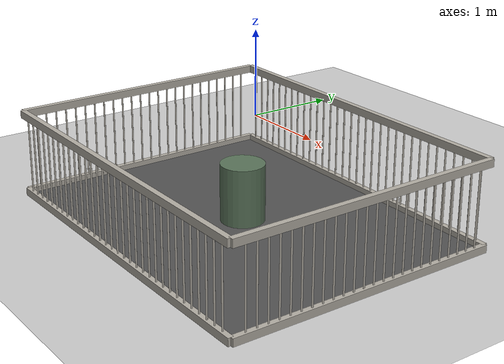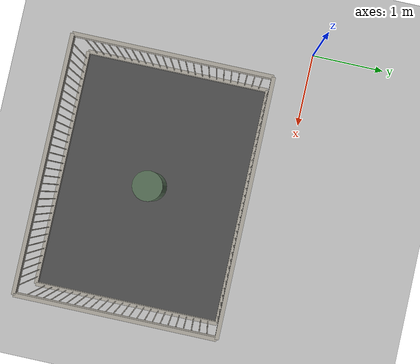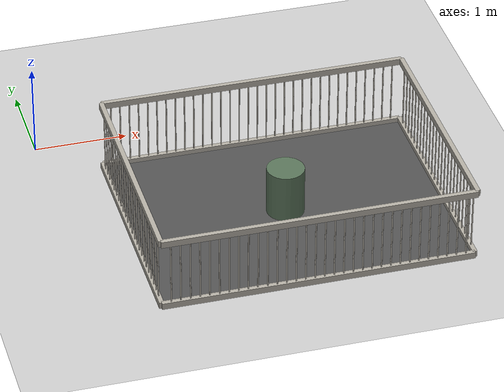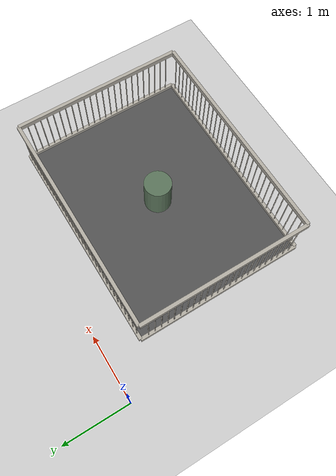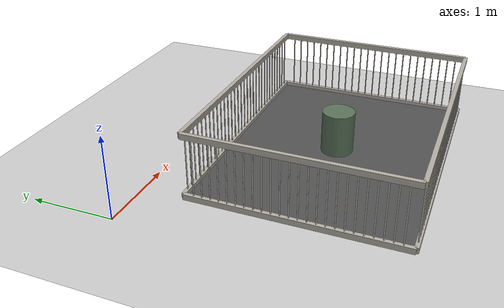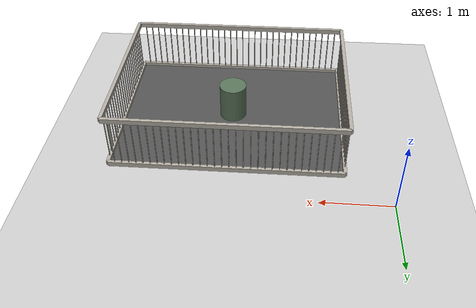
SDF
<sdf version="1.9">
 <world name="pig_pen_16units_world">
  <model name="ground_plane">
   <static>true</static>
   <link name="link">
    <collision name="collision">
     <geometry><plane><normal>0 0 1</normal><size>30 30</size></plane></geometry>
     <surface><friction><ode><mu>1.0</mu><mu2>1.0</mu2></ode></friction></surface>
    </collision>
    <visual name="visual">
     <geometry><plane><normal>0 0 1</normal><size>30 30</size></plane></geometry>
     <material>
      <ambient>0.8 0.8 0.8 1</ambient>
      <diffuse>0.8 0.8 0.8 1</diffuse>
      <specular>0.2 0.2 0.2 1</specular>
     </material>
    </visual>
   </link>
  </model>
  <model name="pen11">
   <pose>2.275 -1.795 0 0 0 0</pose>
   <static>true</static>
   <link name="floor">
    <pose>0 0 0.01 0 0 0</pose>
    <collision name="collision"><geometry><box><size>3.30 2.55 0.02</size></box></geometry></collision>
    <visual name="visual">
     <geometry><box><size>3.30 2.55 0.02</size></box></geometry>
     <material>
      <ambient>0.25 0.25 0.25 1</ambient>
      <diffuse>0.32 0.32 0.32 1</diffuse>
      <specular>0.05 0.05 0.05 1</specular>
     </material>
    </visual>
   </link>
   <link name="left_wall">
    <pose>0 1.275 0.415 0 0 0</pose>
    <collision name="top_rail_col">
     <pose>0 0 0.38 0 0 0</pose>
     <geometry><box><size>3.30 0.05 0.07</size></box></geometry>
    </collision>
    <visual name="top_rail_vis">
     <pose>0 0 0.38 0 0 0</pose>
     <geometry><box><size>3.30 0.05 0.07</size></box></geometry>
     <material><ambient>0.70 0.68 0.64 1</ambient><diffuse>0.70 0.68 0.64 1</diffuse></material>
    </visual>
    <collision name="bottom_rail_col">
     <pose>0 0 -0.38 0 0 0</pose>
     <geometry><box><size>3.30 0.05 0.07</size></box></geometry>
    </collision>
    <visual name="bottom_rail_vis">
     <pose>0 0 -0.38 0 0 0</pose>
     <geometry><box><size>3.30 0.05 0.07</size></box></geometry>
     <material><ambient>0.70 0.68 0.64 1</ambient><diffuse>0.70 0.68 0.64 1</diffuse></material>
    </visual>
    <collision name="bar_01_col">
     <pose>-1.55 0 0 0 0 0</pose>
     <geometry><cylinder><radius>0.0075</radius><length>0.69</length></cylinder></geometry>
    </collision>
    <visual name="bar_01_vis">
     <pose>-1.55 0 0 0 0 0</pose>
     <geometry><cylinder><radius>0.0075</radius><length>0.69</length></cylinder></geometry>
     <material><ambient>0.70 0.68 0.64 1</ambient><diffuse>0.70 0.68 0.64 1</diffuse></material>
    </visual>
    <collision name="bar_02_col">
     <pose>-1.45 0 0 0 0 0</pose>
     <geometry><cylinder><radius>0.0075</radius><length>0.69</length></cylinder></geometry>
    </collision>
    <visual name="bar_02_vis">
     <pose>-1.45 0 0 0 0 0</pose>
     <geometry><cylinder><radius>0.0075</radius><length>0.69</length></cylinder></geometry>
     <material><ambient>0.70 0.68 0.64 1</ambient><diffuse>0.70 0.68 0.64 1</diffuse></material>
    </visual>
    <collision name="bar_03_col">
     <pose>-1.35 0 0 0 0 0</pose>
     <geometry><cylinder><radius>0.0075</radius><length>0.69</length></cylinder></geometry>
    </collision>
    <visual name="bar_03_vis">
     <pose>-1.35 0 0 0 0 0</pose>
     <geometry><cylinder><radius>0.0075</radius><length>0.69</length></cylinder></geometry>
     <material><ambient>0.70 0.68 0.64 1</ambient><diffuse>0.70 0.68 0.64 1</diffuse></material>
    </visual>
    <collision name="bar_04_col">
     <pose>-1.25 0 0 0 0 0</pose>
     <geometry><cylinder><radius>0.0075</radius><length>0.69</length></cylinder></geometry>
    </collision>
    <visual name="bar_04_vis">
     <pose>-1.25 0 0 0 0 0</pose>
     <geometry><cylinder><radius>0.0075</radius><length>0.69</length></cylinder></geometry>
     <material><ambient>0.70 0.68 0.64 1</ambient><diffuse>0.70 0.68 0.64 1</diffuse></material>
    </visual>
    <collision name="bar_05_col">
     <pose>-1.15 0 0 0 0 0</pose>
     <geometry><cylinder><radius>0.0075</radius><length>0.69</length></cylinder></geometry>
    </collision>
    <visual name="bar_05_vis">
     <pose>-1.15 0 0 0 0 0</pose>
     <geometry><cylinder><radius>0.0075</radius><length>0.69</length></cylinder></geometry>
     <material><ambient>0.70 0.68 0.64 1</ambient><diffuse>0.70 0.68 0.64 1</diffuse></material>
    </visual>
    <collision name="bar_06_col">
     <pose>-1.05 0 0 0 0 0</pose>
     <geometry><cylinder><radius>0.0075</radius><length>0.69</length></cylinder></geometry>
    </collision>
    <visual name="bar_06_vis">
     <pose>-1.05 0 0 0 0 0</pose>
     <geometry><cylinder><radius>0.0075</radius><length>0.69</length></cylinder></geometry>
     <material><ambient>0.70 0.68 0.64 1</ambient><diffuse>0.70 0.68 0.64 1</diffuse></material>
    </visual>
    <collision name="bar_07_col">
     <pose>-0.95 0 0 0 0 0</pose>
     <geometry><cylinder><radius>0.0075</radius><length>0.69</length></cylinder></geometry>
    </collision>
    <visual name="bar_07_vis">
     <pose>-0.95 0 0 0 0 0</pose>
     <geometry><cylinder><radius>0.0075</radius><length>0.69</length></cylinder></geometry>
     <material><ambient>0.70 0.68 0.64 1</ambient><diffuse>0.70 0.68 0.64 1</diffuse></material>
    </visual>
    <collision name="bar_08_col">
     <pose>-0.85 0 0 0 0 0</pose>
     <geometry><cylinder><radius>0.0075</radius><length>0.69</length></cylinder></geometry>
    </collision>
    <visual name="bar_08_vis">
     <pose>-0.85 0 0 0 0 0</pose>
     <geometry><cylinder><radius>0.0075</radius><length>0.69</length></cylinder></geometry>
     <material><ambient>0.70 0.68 0.64 1</ambient><diffuse>0.70 0.68 0.64 1</diffuse></material>
    </visual>
    <collision name="bar_09_col">
     <pose>-0.75 0 0 0 0 0</pose>
     <geometry><cylinder><radius>0.0075</radius><length>0.69</length></cylinder></geometry>
    </collision>
    <visual name="bar_09_vis">
     <pose>-0.75 0 0 0 0 0</pose>
     <geometry><cylinder><radius>0.0075</radius><length>0.69</length></cylinder></geometry>
     <material><ambient>0.70 0.68 0.64 1</ambient><diffuse>0.70 0.68 0.64 1</diffuse></material>
    </visual>
    <collision name="bar_10_col">
     <pose>-0.65 0 0 0 0 0</pose>
     <geometry><cylinder><radius>0.0075</radius><length>0.69</length></cylinder></geometry>
    </collision>
    <visual name="bar_10_vis">
     <pose>-0.65 0 0 0 0 0</pose>
     <geometry><cylinder><radius>0.0075</radius><length>0.69</length></cylinder></geometry>
     <material><ambient>0.70 0.68 0.64 1</ambient><diffuse>0.70 0.68 0.64 1</diffuse></material>
    </visual>
    <collision name="bar_11_col">
     <pose>-0.55 0 0 0 0 0</pose>
     <geometry><cylinder><radius>0.0075</radius><length>0.69</length></cylinder></geometry>
    </collision>
    <visual name="bar_11_vis">
     <pose>-0.55 0 0 0 0 0</pose>
     <geometry><cylinder><radius>0.0075</radius><length>0.69</length></cylinder></geometry>
     <material><ambient>0.70 0.68 0.64 1</ambient><diffuse>0.70 0.68 0.64 1</diffuse></material>
    </visual>
    <collision name="bar_12_col">
     <pose>-0.45 0 0 0 0 0</pose>
     <geometry><cylinder><radius>0.0075</radius><length>0.69</length></cylinder></geometry>
    </collision>
    <visual name="bar_12_vis">
     <pose>-0.45 0 0 0 0 0</pose>
     <geometry><cylinder><radius>0.0075</radius><length>0.69</length></cylinder></geometry>
     <material><ambient>0.70 0.68 0.64 1</ambient><diffuse>0.70 0.68 0.64 1</diffuse></material>
    </visual>
    <collision name="bar_13_col">
     <pose>-0.35 0 0 0 0 0</pose>
     <geometry><cylinder><radius>0.0075</radius><length>0.69</length></cylinder></geometry>
    </collision>
    <visual name="bar_13_vis">
     <pose>-0.35 0 0 0 0 0</pose>
     <geometry><cylinder><radius>0.0075</radius><length>0.69</length></cylinder></geometry>
     <material><ambient>0.70 0.68 0.64 1</ambient><diffuse>0.70 0.68 0.64 1</diffuse></material>
    </visual>
    <collision name="bar_14_col">
     <pose>-0.25 0 0 0 0 0</pose>
     <geometry><cylinder><radius>0.0075</radius><length>0.69</length></cylinder></geometry>
    </collision>
    <visual name="bar_14_vis">
     <pose>-0.25 0 0 0 0 0</pose>
     <geometry><cylinder><radius>0.0075</radius><length>0.69</length></cylinder></geometry>
     <material><ambient>0.70 0.68 0.64 1</ambient><diffuse>0.70 0.68 0.64 1</diffuse></material>
    </visual>
    <collision name="bar_15_col">
     <pose>-0.15 0 0 0 0 0</pose>
     <geometry><cylinder><radius>0.0075</radius><length>0.69</length></cylinder></geometry>
    </collision>
    <visual name="bar_15_vis">
     <pose>-0.15 0 0 0 0 0</pose>
     <geometry><cylinder><radius>0.0075</radius><length>0.69</length></cylinder></geometry>
     <material><ambient>0.70 0.68 0.64 1</ambient><diffuse>0.70 0.68 0.64 1</diffuse></material>
    </visual>
    <collision name="bar_16_col">
     <pose>-0.05 0 0 0 0 0</pose>
     <geometry><cylinder><radius>0.0075</radius><length>0.69</length></cylinder></geometry>
    </collision>
    <visual name="bar_16_vis">
     <pose>-0.05 0 0 0 0 0</pose>
     <geometry><cylinder><radius>0.0075</radius><length>0.69</length></cylinder></geometry>
     <material><ambient>0.70 0.68 0.64 1</ambient><diffuse>0.70 0.68 0.64 1</diffuse></material>
    </visual>
    <collision name="bar_17_col">
     <pose>0.05 0 0 0 0 0</pose>
     <geometry><cylinder><radius>0.0075</radius><length>0.69</length></cylinder></geometry>
    </collision>
    <visual name="bar_17_vis">
     <pose>0.05 0 0 0 0 0</pose>
     <geometry><cylinder><radius>0.0075</radius><length>0.69</length></cylinder></geometry>
     <material><ambient>0.70 0.68 0.64 1</ambient><diffuse>0.70 0.68 0.64 1</diffuse></material>
    </visual>
    <collision name="bar_18_col">
     <pose>0.15 0 0 0 0 0</pose>
     <geometry><cylinder><radius>0.0075</radius><length>0.69</length></cylinder></geometry>
    </collision>
    <visual name="bar_18_vis">
     <pose>0.15 0 0 0 0 0</pose>
     <geometry><cylinder><radius>0.0075</radius><length>0.69</length></cylinder></geometry>
     <material><ambient>0.70 0.68 0.64 1</ambient><diffuse>0.70 0.68 0.64 1</diffuse></material>
    </visual>
    <collision name="bar_19_col">
     <pose>0.25 0 0 0 0 0</pose>
     <geometry><cylinder><radius>0.0075</radius><length>0.69</length></cylinder></geometry>
    </collision>
    <visual name="bar_19_vis">
     <pose>0.25 0 0 0 0 0</pose>
     <geometry><cylinder><radius>0.0075</radius><length>0.69</length></cylinder></geometry>
     <material><ambient>0.70 0.68 0.64 1</ambient><diffuse>0.70 0.68 0.64 1</diffuse></material>
    </visual>
    <collision name="bar_20_col">
     <pose>0.35 0 0 0 0 0</pose>
     <geometry><cylinder><radius>0.0075</radius><length>0.69</length></cylinder></geometry>
    </collision>
    <visual name="bar_20_vis">
     <pose>0.35 0 0 0 0 0</pose>
     <geometry><cylinder><radius>0.0075</radius><length>0.69</length></cylinder></geometry>
     <material><ambient>0.70 0.68 0.64 1</ambient><diffuse>0.70 0.68 0.64 1</diffuse></material>
    </visual>
    <collision name="bar_21_col">
     <pose>0.45 0 0 0 0 0</pose>
     <geometry><cylinder><radius>0.0075</radius><length>0.69</length></cylinder></geometry>
    </collision>
    <visual name="bar_21_vis">
     <pose>0.45 0 0 0 0 0</pose>
     <geometry><cylinder><radius>0.0075</radius><length>0.69</length></cylinder></geometry>
     <material><ambient>0.70 0.68 0.64 1</ambient><diffuse>0.70 0.68 0.64 1</diffuse></material>
    </visual>
    <collision name="bar_22_col">
     <pose>0.55 0 0 0 0 0</pose>
     <geometry><cylinder><radius>0.0075</radius><length>0.69</length></cylinder></geometry>
    </collision>
    <visual name="bar_22_vis">
     <pose>0.55 0 0 0 0 0</pose>
     <geometry><cylinder><radius>0.0075</radius><length>0.69</length></cylinder></geometry>
     <material><ambient>0.70 0.68 0.64 1</ambient><diffuse>0.70 0.68 0.64 1</diffuse></material>
    </visual>
    <collision name="bar_23_col">
     <pose>0.65 0 0 0 0 0</pose>
     <geometry><cylinder><radius>0.0075</radius><length>0.69</length></cylinder></geometry>
    </collision>
    <visual name="bar_23_vis">
     <pose>0.65 0 0 0 0 0</pose>
     <geometry><cylinder><radius>0.0075</radius><length>0.69</length></cylinder></geometry>
     <material><ambient>0.70 0.68 0.64 1</ambient><diffuse>0.70 0.68 0.64 1</diffuse></material>
    </visual>
    <collision name="bar_24_col">
     <pose>0.75 0 0 0 0 0</pose>
     <geometry><cylinder><radius>0.0075</radius><length>0.69</length></cylinder></geometry>
    </collision>
    <visual name="bar_24_vis">
     <pose>0.75 0 0 0 0 0</pose>
     <geometry><cylinder><radius>0.0075</radius><length>0.69</length></cylinder></geometry>
     <material><ambient>0.70 0.68 0.64 1</ambient><diffuse>0.70 0.68 0.64 1</diffuse></material>
    </visual>
    <collision name="bar_25_col">
     <pose>0.85 0 0 0 0 0</pose>
     <geometry><cylinder><radius>0.0075</radius><length>0.69</length></cylinder></geometry>
    </collision>
    <visual name="bar_25_vis">
     <pose>0.85 0 0 0 0 0</pose>
     <geometry><cylinder><radius>0.0075</radius><length>0.69</length></cylinder></geometry>
     <material><ambient>0.70 0.68 0.64 1</ambient><diffuse>0.70 0.68 0.64 1</diffuse></material>
    </visual>
    <collision name="bar_26_col">
     <pose>0.95 0 0 0 0 0</pose>
     <geometry><cylinder><radius>0.0075</radius><length>0.69</length></cylinder></geometry>
    </collision>
    <visual name="bar_26_vis">
     <pose>0.95 0 0 0 0 0</pose>
     <geometry><cylinder><radius>0.0075</radius><length>0.69</length></cylinder></geometry>
     <material><ambient>0.70 0.68 0.64 1</ambient><diffuse>0.70 0.68 0.64 1</diffuse></material>
    </visual>
    <collision name="bar_27_col">
     <pose>1.05 0 0 0 0 0</pose>
     <geometry><cylinder><radius>0.0075</radius><length>0.69</length></cylinder></geometry>
    </collision>
    <visual name="bar_27_vis">
     <pose>1.05 0 0 0 0 0</pose>
     <geometry><cylinder><radius>0.0075</radius><length>0.69</length></cylinder></geometry>
     <material><ambient>0.70 0.68 0.64 1</ambient><diffuse>0.70 0.68 0.64 1</diffuse></material>
    </visual>
    <collision name="bar_28_col">
     <pose>1.15 0 0 0 0 0</pose>
     <geometry><cylinder><radius>0.0075</radius><length>0.69</length></cylinder></geometry>
    </collision>
    <visual name="bar_28_vis">
     <pose>1.15 0 0 0 0 0</pose>
     <geometry><cylinder><radius>0.0075</radius><length>0.69</length></cylinder></geometry>
     <material><ambient>0.70 0.68 0.64 1</ambient><diffuse>0.70 0.68 0.64 1</diffuse></material>
    </visual>
    <collision name="bar_29_col">
     <pose>1.25 0 0 0 0 0</pose>
     <geometry><cylinder><radius>0.0075</radius><length>0.69</length></cylinder></geometry>
    </collision>
    <visual name="bar_29_vis">
     <pose>1.25 0 0 0 0 0</pose>
     <geometry><cylinder><radius>0.0075</radius><length>0.69</length></cylinder></geometry>
     <material><ambient>0.70 0.68 0.64 1</ambient><diffuse>0.70 0.68 0.64 1</diffuse></material>
    </visual>
    <collision name="bar_30_col">
     <pose>1.35 0 0 0 0 0</pose>
     <geometry><cylinder><radius>0.0075</radius><length>0.69</length></cylinder></geometry>
    </collision>
    <visual name="bar_30_vis">
     <pose>1.35 0 0 0 0 0</pose>
     <geometry><cylinder><radius>0.0075</radius><length>0.69</length></cylinder></geometry>
     <material><ambient>0.70 0.68 0.64 1</ambient><diffuse>0.70 0.68 0.64 1</diffuse></material>
    </visual>
    <collision name="bar_31_col">
     <pose>1.45 0 0 0 0 0</pose>
     <geometry><cylinder><radius>0.0075</radius><length>0.69</length></cylinder></geometry>
    </collision>
    <visual name="bar_31_vis">
     <pose>1.45 0 0 0 0 0</pose>
     <geometry><cylinder><radius>0.0075</radius><length>0.69</length></cylinder></geometry>
     <material><ambient>0.70 0.68 0.64 1</ambient><diffuse>0.70 0.68 0.64 1</diffuse></material>
    </visual>
    <collision name="bar_32_col">
     <pose>1.55 0 0 0 0 0</pose>
     <geometry><cylinder><radius>0.0075</radius><length>0.69</length></cylinder></geometry>
    </collision>
    <visual name="bar_32_vis">
     <pose>1.55 0 0 0 0 0</pose>
     <geometry><cylinder><radius>0.0075</radius><length>0.69</length></cylinder></geometry>
     <material><ambient>0.70 0.68 0.64 1</ambient><diffuse>0.70 0.68 0.64 1</diffuse></material>
    </visual>
   </link>
   <link name="right_wall">
    <pose>0 -1.275 0.415 0 0 0</pose>
    <collision name="top_rail_col">
     <pose>0 0 0.38 0 0 0</pose>
     <geometry><box><size>3.30 0.05 0.07</size></box></geometry>
    </collision>
    <visual name="top_rail_vis">
     <pose>0 0 0.38 0 0 0</pose>
     <geometry><box><size>3.30 0.05 0.07</size></box></geometry>
     <material><ambient>0.70 0.68 0.64 1</ambient><diffuse>0.70 0.68 0.64 1</diffuse></material>
    </visual>
    <collision name="bottom_rail_col">
     <pose>0 0 -0.38 0 0 0</pose>
     <geometry><box><size>3.30 0.05 0.07</size></box></geometry>
    </collision>
    <visual name="bottom_rail_vis">
     <pose>0 0 -0.38 0 0 0</pose>
     <geometry><box><size>3.30 0.05 0.07</size></box></geometry>
     <material><ambient>0.70 0.68 0.64 1</ambient><diffuse>0.70 0.68 0.64 1</diffuse></material>
    </visual>
    <collision name="bar_01_col">
     <pose>-1.55 0 0 0 0 0</pose>
     <geometry><cylinder><radius>0.0075</radius><length>0.69</length></cylinder></geometry>
    </collision>
    <visual name="bar_01_vis">
     <pose>-1.55 0 0 0 0 0</pose>
     <geometry><cylinder><radius>0.0075</radius><length>0.69</length></cylinder></geometry>
     <material><ambient>0.70 0.68 0.64 1</ambient><diffuse>0.70 0.68 0.64 1</diffuse></material>
    </visual>
    <collision name="bar_02_col">
     <pose>-1.45 0 0 0 0 0</pose>
     <geometry><cylinder><radius>0.0075</radius><length>0.69</length></cylinder></geometry>
    </collision>
    <visual name="bar_02_vis">
     <pose>-1.45 0 0 0 0 0</pose>
     <geometry><cylinder><radius>0.0075</radius><length>0.69</length></cylinder></geometry>
     <material><ambient>0.70 0.68 0.64 1</ambient><diffuse>0.70 0.68 0.64 1</diffuse></material>
    </visual>
    <collision name="bar_03_col">
     <pose>-1.35 0 0 0 0 0</pose>
     <geometry><cylinder><radius>0.0075</radius><length>0.69</length></cylinder></geometry>
    </collision>
    <visual name="bar_03_vis">
     <pose>-1.35 0 0 0 0 0</pose>
     <geometry><cylinder><radius>0.0075</radius><length>0.69</length></cylinder></geometry>
     <material><ambient>0.70 0.68 0.64 1</ambient><diffuse>0.70 0.68 0.64 1</diffuse></material>
    </visual>
    <collision name="bar_04_col">
     <pose>-1.25 0 0 0 0 0</pose>
     <geometry><cylinder><radius>0.0075</radius><length>0.69</length></cylinder></geometry>
    </collision>
    <visual name="bar_04_vis">
     <pose>-1.25 0 0 0 0 0</pose>
     <geometry><cylinder><radius>0.0075</radius><length>0.69</length></cylinder></geometry>
     <material><ambient>0.70 0.68 0.64 1</ambient><diffuse>0.70 0.68 0.64 1</diffuse></material>
    </visual>
    <collision name="bar_05_col">
     <pose>-1.15 0 0 0 0 0</pose>
     <geometry><cylinder><radius>0.0075</radius><length>0.69</length></cylinder></geometry>
    </collision>
    <visual name="bar_05_vis">
     <pose>-1.15 0 0 0 0 0</pose>
     <geometry><cylinder><radius>0.0075</radius><length>0.69</length></cylinder></geometry>
     <material><ambient>0.70 0.68 0.64 1</ambient><diffuse>0.70 0.68 0.64 1</diffuse></material>
    </visual>
    <collision name="bar_06_col">
     <pose>-1.05 0 0 0 0 0</pose>
     <geometry><cylinder><radius>0.0075</radius><length>0.69</length></cylinder></geometry>
    </collision>
    <visual name="bar_06_vis">
     <pose>-1.05 0 0 0 0 0</pose>
     <geometry><cylinder><radius>0.0075</radius><length>0.69</length></cylinder></geometry>
     <material><ambient>0.70 0.68 0.64 1</ambient><diffuse>0.70 0.68 0.64 1</diffuse></material>
    </visual>
    <collision name="bar_07_col">
     <pose>-0.95 0 0 0 0 0</pose>
     <geometry><cylinder><radius>0.0075</radius><length>0.69</length></cylinder></geometry>
    </collision>
    <visual name="bar_07_vis">
     <pose>-0.95 0 0 0 0 0</pose>
     <geometry><cylinder><radius>0.0075</radius><length>0.69</length></cylinder></geometry>
     <material><ambient>0.70 0.68 0.64 1</ambient><diffuse>0.70 0.68 0.64 1</diffuse></material>
    </visual>
    <collision name="bar_08_col">
     <pose>-0.85 0 0 0 0 0</pose>
     <geometry><cylinder><radius>0.0075</radius><length>0.69</length></cylinder></geometry>
    </collision>
    <visual name="bar_08_vis">
     <pose>-0.85 0 0 0 0 0</pose>
     <geometry><cylinder><radius>0.0075</radius><length>0.69</length></cylinder></geometry>
     <material><ambient>0.70 0.68 0.64 1</ambient><diffuse>0.70 0.68 0.64 1</diffuse></material>
    </visual>
    <collision name="bar_09_col">
     <pose>-0.75 0 0 0 0 0</pose>
     <geometry><cylinder><radius>0.0075</radius><length>0.69</length></cylinder></geometry>
    </collision>
    <visual name="bar_09_vis">
     <pose>-0.75 0 0 0 0 0</pose>
     <geometry><cylinder><radius>0.0075</radius><length>0.69</length></cylinder></geometry>
     <material><ambient>0.70 0.68 0.64 1</ambient><diffuse>0.70 0.68 0.64 1</diffuse></material>
    </visual>
    <collision name="bar_10_col">
     <pose>-0.65 0 0 0 0 0</pose>
     <geometry><cylinder><radius>0.0075</radius><length>0.69</length></cylinder></geometry>
    </collision>
    <visual name="bar_10_vis">
     <pose>-0.65 0 0 0 0 0</pose>
     <geometry><cylinder><radius>0.0075</radius><length>0.69</length></cylinder></geometry>
     <material><ambient>0.70 0.68 0.64 1</ambient><diffuse>0.70 0.68 0.64 1</diffuse></material>
    </visual>
    <collision name="bar_11_col">
     <pose>-0.55 0 0 0 0 0</pose>
     <geometry><cylinder><radius>0.0075</radius><length>0.69</length></cylinder></geometry>
    </collision>
    <visual name="bar_11_vis">
     <pose>-0.55 0 0 0 0 0</pose>
     <geometry><cylinder><radius>0.0075</radius><length>0.69</length></cylinder></geometry>
     <material><ambient>0.70 0.68 0.64 1</ambient><diffuse>0.70 0.68 0.64 1</diffuse></material>
    </visual>
    <collision name="bar_12_col">
     <pose>-0.45 0 0 0 0 0</pose>
     <geometry><cylinder><radius>0.0075</radius><length>0.69</length></cylinder></geometry>
    </collision>
    <visual name="bar_12_vis">
     <pose>-0.45 0 0 0 0 0</pose>
     <geometry><cylinder><radius>0.0075</radius><length>0.69</length></cylinder></geometry>
     <material><ambient>0.70 0.68 0.64 1</ambient><diffuse>0.70 0.68 0.64 1</diffuse></material>
    </visual>
    <collision name="bar_13_col">
     <pose>-0.35 0 0 0 0 0</pose>
     <geometry><cylinder><radius>0.0075</radius><length>0.69</length></cylinder></geometry>
    </collision>
    <visual name="bar_13_vis">
     <pose>-0.35 0 0 0 0 0</pose>
     <geometry><cylinder><radius>0.0075</radius><length>0.69</length></cylinder></geometry>
     <material><ambient>0.70 0.68 0.64 1</ambient><diffuse>0.70 0.68 0.64 1</diffuse></material>
    </visual>
    <collision name="bar_14_col">
     <pose>-0.25 0 0 0 0 0</pose>
     <geometry><cylinder><radius>0.0075</radius><length>0.69</length></cylinder></geometry>
    </collision>
    <visual name="bar_14_vis">
     <pose>-0.25 0 0 0 0 0</pose>
     <geometry><cylinder><radius>0.0075</radius><length>0.69</length></cylinder></geometry>
     <material><ambient>0.70 0.68 0.64 1</ambient><diffuse>0.70 0.68 0.64 1</diffuse></material>
    </visual>
    <collision name="bar_15_col">
     <pose>-0.15 0 0 0 0 0</pose>
     <geometry><cylinder><radius>0.0075</radius><length>0.69</length></cylinder></geometry>
    </collision>
    <visual name="bar_15_vis">
     <pose>-0.15 0 0 0 0 0</pose>
     <geometry><cylinder><radius>0.0075</radius><length>0.69</length></cylinder></geometry>
     <material><ambient>0.70 0.68 0.64 1</ambient><diffuse>0.70 0.68 0.64 1</diffuse></material>
    </visual>
    <collision name="bar_16_col">
     <pose>-0.05 0 0 0 0 0</pose>
     <geometry><cylinder><radius>0.0075</radius><length>0.69</length></cylinder></geometry>
    </collision>
    <visual name="bar_16_vis">
     <pose>-0.05 0 0 0 0 0</pose>
     <geometry><cylinder><radius>0.0075</radius><length>0.69</length></cylinder></geometry>
     <material><ambient>0.70 0.68 0.64 1</ambient><diffuse>0.70 0.68 0.64 1</diffuse></material>
    </visual>
    <collision name="bar_17_col">
     <pose>0.05 0 0 0 0 0</pose>
     <geometry><cylinder><radius>0.0075</radius><length>0.69</length></cylinder></geometry>
    </collision>
    <visual name="bar_17_vis">
     <pose>0.05 0 0 0 0 0</pose>
     <geometry><cylinder><radius>0.0075</radius><length>0.69</length></cylinder></geometry>
     <material><ambient>0.70 0.68 0.64 1</ambient><diffuse>0.70 0.68 0.64 1</diffuse></material>
    </visual>
    <collision name="bar_18_col">
     <pose>0.15 0 0 0 0 0</pose>
     <geometry><cylinder><radius>0.0075</radius><length>0.69</length></cylinder></geometry>
    </collision>
    <visual name="bar_18_vis">
     <pose>0.15 0 0 0 0 0</pose>
     <geometry><cylinder><radius>0.0075</radius><length>0.69</length></cylinder></geometry>
     <material><ambient>0.70 0.68 0.64 1</ambient><diffuse>0.70 0.68 0.64 1</diffuse></material>
    </visual>
    <collision name="bar_19_col">
     <pose>0.25 0 0 0 0 0</pose>
     <geometry><cylinder><radius>0.0075</radius><length>0.69</length></cylinder></geometry>
    </collision>
    <visual name="bar_19_vis">
     <pose>0.25 0 0 0 0 0</pose>
     <geometry><cylinder><radius>0.0075</radius><length>0.69</length></cylinder></geometry>
     <material><ambient>0.70 0.68 0.64 1</ambient><diffuse>0.70 0.68 0.64 1</diffuse></material>
    </visual>
    <collision name="bar_20_col">
     <pose>0.35 0 0 0 0 0</pose>
     <geometry><cylinder><radius>0.0075</radius><length>0.69</length></cylinder></geometry>
    </collision>
    <visual name="bar_20_vis">
     <pose>0.35 0 0 0 0 0</pose>
     <geometry><cylinder><radius>0.0075</radius><length>0.69</length></cylinder></geometry>
     <material><ambient>0.70 0.68 0.64 1</ambient><diffuse>0.70 0.68 0.64 1</diffuse></material>
    </visual>
    <collision name="bar_21_col">
     <pose>0.45 0 0 0 0 0</pose>
     <geometry><cylinder><radius>0.0075</radius><length>0.69</length></cylinder></geometry>
    </collision>
    <visual name="bar_21_vis">
     <pose>0.45 0 0 0 0 0</pose>
     <geometry><cylinder><radius>0.0075</radius><length>0.69</length></cylinder></geometry>
     <material><ambient>0.70 0.68 0.64 1</ambient><diffuse>0.70 0.68 0.64 1</diffuse></material>
    </visual>
    <collision name="bar_22_col">
     <pose>0.55 0 0 0 0 0</pose>
     <geometry><cylinder><radius>0.0075</radius><length>0.69</length></cylinder></geometry>
    </collision>
    <visual name="bar_22_vis">
     <pose>0.55 0 0 0 0 0</pose>
     <geometry><cylinder><radius>0.0075</radius><length>0.69</length></cylinder></geometry>
     <material><ambient>0.70 0.68 0.64 1</ambient><diffuse>0.70 0.68 0.64 1</diffuse></material>
    </visual>
    <collision name="bar_23_col">
     <pose>0.65 0 0 0 0 0</pose>
     <geometry><cylinder><radius>0.0075</radius><length>0.69</length></cylinder></geometry>
    </collision>
    <visual name="bar_23_vis">
     <pose>0.65 0 0 0 0 0</pose>
     <geometry><cylinder><radius>0.0075</radius><length>0.69</length></cylinder></geometry>
     <material><ambient>0.70 0.68 0.64 1</ambient><diffuse>0.70 0.68 0.64 1</diffuse></material>
    </visual>
    <collision name="bar_24_col">
     <pose>0.75 0 0 0 0 0</pose>
     <geometry><cylinder><radius>0.0075</radius><length>0.69</length></cylinder></geometry>
    </collision>
    <visual name="bar_24_vis">
     <pose>0.75 0 0 0 0 0</pose>
     <geometry><cylinder><radius>0.0075</radius><length>0.69</length></cylinder></geometry>
     <material><ambient>0.70 0.68 0.64 1</ambient><diffuse>0.70 0.68 0.64 1</diffuse></material>
    </visual>
    <collision name="bar_25_col">
     <pose>0.85 0 0 0 0 0</pose>
     <geometry><cylinder><radius>0.0075</radius><length>0.69</length></cylinder></geometry>
    </collision>
    <visual name="bar_25_vis">
     <pose>0.85 0 0 0 0 0</pose>
     <geometry><cylinder><radius>0.0075</radius><length>0.69</length></cylinder></geometry>
     <material><ambient>0.70 0.68 0.64 1</ambient><diffuse>0.70 0.68 0.64 1</diffuse></material>
    </visual>
    <collision name="bar_26_col">
     <pose>0.95 0 0 0 0 0</pose>
     <geometry><cylinder><radius>0.0075</radius><length>0.69</length></cylinder></geometry>
    </collision>
    <visual name="bar_26_vis">
     <pose>0.95 0 0 0 0 0</pose>
     <geometry><cylinder><radius>0.0075</radius><length>0.69</length></cylinder></geometry>
     <material><ambient>0.70 0.68 0.64 1</ambient><diffuse>0.70 0.68 0.64 1</diffuse></material>
    </visual>
    <collision name="bar_27_col">
     <pose>1.05 0 0 0 0 0</pose>
     <geometry><cylinder><radius>0.0075</radius><length>0.69</length></cylinder></geometry>
    </collision>
    <visual name="bar_27_vis">
     <pose>1.05 0 0 0 0 0</pose>
     <geometry><cylinder><radius>0.0075</radius><length>0.69</length></cylinder></geometry>
     <material><ambient>0.70 0.68 0.64 1</ambient><diffuse>0.70 0.68 0.64 1</diffuse></material>
    </visual>
    <collision name="bar_28_col">
     <pose>1.15 0 0 0 0 0</pose>
     <geometry><cylinder><radius>0.0075</radius><length>0.69</length></cylinder></geometry>
    </collision>
    <visual name="bar_28_vis">
     <pose>1.15 0 0 0 0 0</pose>
     <geometry><cylinder><radius>0.0075</radius><length>0.69</length></cylinder></geometry>
     <material><ambient>0.70 0.68 0.64 1</ambient><diffuse>0.70 0.68 0.64 1</diffuse></material>
    </visual>
    <collision name="bar_29_col">
     <pose>1.25 0 0 0 0 0</pose>
     <geometry><cylinder><radius>0.0075</radius><length>0.69</length></cylinder></geometry>
    </collision>
    <visual name="bar_29_vis">
     <pose>1.25 0 0 0 0 0</pose>
     <geometry><cylinder><radius>0.0075</radius><length>0.69</length></cylinder></geometry>
     <material><ambient>0.70 0.68 0.64 1</ambient><diffuse>0.70 0.68 0.64 1</diffuse></material>
    </visual>
    <collision name="bar_30_col">
     <pose>1.35 0 0 0 0 0</pose>
     <geometry><cylinder><radius>0.0075</radius><length>0.69</length></cylinder></geometry>
    </collision>
    <visual name="bar_30_vis">
     <pose>1.35 0 0 0 0 0</pose>
     <geometry><cylinder><radius>0.0075</radius><length>0.69</length></cylinder></geometry>
     <material><ambient>0.70 0.68 0.64 1</ambient><diffuse>0.70 0.68 0.64 1</diffuse></material>
    </visual>
    <collision name="bar_31_col">
     <pose>1.45 0 0 0 0 0</pose>
     <geometry><cylinder><radius>0.0075</radius><length>0.69</length></cylinder></geometry>
    </collision>
    <visual name="bar_31_vis">
     <pose>1.45 0 0 0 0 0</pose>
     <geometry><cylinder><radius>0.0075</radius><length>0.69</length></cylinder></geometry>
     <material><ambient>0.70 0.68 0.64 1</ambient><diffuse>0.70 0.68 0.64 1</diffuse></material>
    </visual>
    <collision name="bar_32_col">
     <pose>1.55 0 0 0 0 0</pose>
     <geometry><cylinder><radius>0.0075</radius><length>0.69</length></cylinder></geometry>
    </collision>
    <visual name="bar_32_vis">
     <pose>1.55 0 0 0 0 0</pose>
     <geometry><cylinder><radius>0.0075</radius><length>0.69</length></cylinder></geometry>
     <material><ambient>0.70 0.68 0.64 1</ambient><diffuse>0.70 0.68 0.64 1</diffuse></material>
    </visual>
   </link>
   <link name="back_wall">
    <pose>1.65 0 0.415 0 0 0</pose>
    <collision name="top_rail_col">
     <pose>0 0 0.38 0 0 0</pose>
     <geometry><box><size>0.05 2.55 0.07</size></box></geometry>
    </collision>
    <visual name="top_rail_vis">
     <pose>0 0 0.38 0 0 0</pose>
     <geometry><box><size>0.05 2.55 0.07</size></box></geometry>
     <material><ambient>0.70 0.68 0.64 1</ambient><diffuse>0.70 0.68 0.64 1</diffuse></material>
    </visual>
    <collision name="bottom_rail_col">
     <pose>0 0 -0.38 0 0 0</pose>
     <geometry><box><size>0.05 2.55 0.07</size></box></geometry>
    </collision>
    <visual name="bottom_rail_vis">
     <pose>0 0 -0.38 0 0 0</pose>
     <geometry><box><size>0.05 2.55 0.07</size></box></geometry>
     <material><ambient>0.70 0.68 0.64 1</ambient><diffuse>0.70 0.68 0.64 1</diffuse></material>
    </visual>
    <collision name="bar_01_col">
     <pose>0 -1.15 0 0 0 0</pose>
     <geometry><cylinder><radius>0.0075</radius><length>0.69</length></cylinder></geometry>
    </collision>
    <visual name="bar_01_vis">
     <pose>0 -1.15 0 0 0 0</pose>
     <geometry><cylinder><radius>0.0075</radius><length>0.69</length></cylinder></geometry>
     <material><ambient>0.70 0.68 0.64 1</ambient><diffuse>0.70 0.68 0.64 1</diffuse></material>
    </visual>
    <collision name="bar_02_col">
     <pose>0 -1.05 0 0 0 0</pose>
     <geometry><cylinder><radius>0.0075</radius><length>0.69</length></cylinder></geometry>
    </collision>
    <visual name="bar_02_vis">
     <pose>0 -1.05 0 0 0 0</pose>
     <geometry><cylinder><radius>0.0075</radius><length>0.69</length></cylinder></geometry>
     <material><ambient>0.70 0.68 0.64 1</ambient><diffuse>0.70 0.68 0.64 1</diffuse></material>
    </visual>
    <collision name="bar_03_col">
     <pose>0 -0.95 0 0 0 0</pose>
     <geometry><cylinder><radius>0.0075</radius><length>0.69</length></cylinder></geometry>
    </collision>
    <visual name="bar_03_vis">
     <pose>0 -0.95 0 0 0 0</pose>
     <geometry><cylinder><radius>0.0075</radius><length>0.69</length></cylinder></geometry>
     <material><ambient>0.70 0.68 0.64 1</ambient><diffuse>0.70 0.68 0.64 1</diffuse></material>
    </visual>
    <collision name="bar_04_col">
     <pose>0 -0.85 0 0 0 0</pose>
     <geometry><cylinder><radius>0.0075</radius><length>0.69</length></cylinder></geometry>
    </collision>
    <visual name="bar_04_vis">
     <pose>0 -0.85 0 0 0 0</pose>
     <geometry><cylinder><radius>0.0075</radius><length>0.69</length></cylinder></geometry>
     <material><ambient>0.70 0.68 0.64 1</ambient><diffuse>0.70 0.68 0.64 1</diffuse></material>
    </visual>
    <collision name="bar_05_col">
     <pose>0 -0.75 0 0 0 0</pose>
     <geometry><cylinder><radius>0.0075</radius><length>0.69</length></cylinder></geometry>
    </collision>
    <visual name="bar_05_vis">
     <pose>0 -0.75 0 0 0 0</pose>
     <geometry><cylinder><radius>0.0075</radius><length>0.69</length></cylinder></geometry>
     <material><ambient>0.70 0.68 0.64 1</ambient><diffuse>0.70 0.68 0.64 1</diffuse></material>
    </visual>
    <collision name="bar_06_col">
     <pose>0 -0.65 0 0 0 0</pose>
     <geometry><cylinder><radius>0.0075</radius><length>0.69</length></cylinder></geometry>
    </collision>
    <visual name="bar_06_vis">
     <pose>0 -0.65 0 0 0 0</pose>
     <geometry><cylinder><radius>0.0075</radius><length>0.69</length></cylinder></geometry>
     <material><ambient>0.70 0.68 0.64 1</ambient><diffuse>0.70 0.68 0.64 1</diffuse></material>
    </visual>
    <collision name="bar_07_col">
     <pose>0 -0.55 0 0 0 0</pose>
     <geometry><cylinder><radius>0.0075</radius><length>0.69</length></cylinder></geometry>
    </collision>
    <visual name="bar_07_vis">
     <pose>0 -0.55 0 0 0 0</pose>
     <geometry><cylinder><radius>0.0075</radius><length>0.69</length></cylinder></geometry>
     <material><ambient>0.70 0.68 0.64 1</ambient><diffuse>0.70 0.68 0.64 1</diffuse></material>
    </visual>
    <collision name="bar_08_col">
     <pose>0 -0.45 0 0 0 0</pose>
     <geometry><cylinder><radius>0.0075</radius><length>0.69</length></cylinder></geometry>
    </collision>
    <visual name="bar_08_vis">
     <pose>0 -0.45 0 0 0 0</pose>
     <geometry><cylinder><radius>0.0075</radius><length>0.69</length></cylinder></geometry>
     <material><ambient>0.70 0.68 0.64 1</ambient><diffuse>0.70 0.68 0.64 1</diffuse></material>
    </visual>
    <collision name="bar_09_col">
     <pose>0 -0.35 0 0 0 0</pose>
     <geometry><cylinder><radius>0.0075</radius><length>0.69</length></cylinder></geometry>
    </collision>
    <visual name="bar_09_vis">
     <pose>0 -0.35 0 0 0 0</pose>
     <geometry><cylinder><radius>0.0075</radius><length>0.69</length></cylinder></geometry>
     <material><ambient>0.70 0.68 0.64 1</ambient><diffuse>0.70 0.68 0.64 1</diffuse></material>
    </visual>
    <collision name="bar_10_col">
     <pose>0 -0.25 0 0 0 0</pose>
     <geometry><cylinder><radius>0.0075</radius><length>0.69</length></cylinder></geometry>
    </collision>
    <visual name="bar_10_vis">
     <pose>0 -0.25 0 0 0 0</pose>
     <geometry><cylinder><radius>0.0075</radius><length>0.69</length></cylinder></geometry>
     <material><ambient>0.70 0.68 0.64 1</ambient><diffuse>0.70 0.68 0.64 1</diffuse></material>
    </visual>
    <collision name="bar_11_col">
     <pose>0 -0.15 0 0 0 0</pose>
     <geometry><cylinder><radius>0.0075</radius><length>0.69</length></cylinder></geometry>
    </collision>
    <visual name="bar_11_vis">
     <pose>0 -0.15 0 0 0 0</pose>
     <geometry><cylinder><radius>0.0075</radius><length>0.69</length></cylinder></geometry>
     <material><ambient>0.70 0.68 0.64 1</ambient><diffuse>0.70 0.68 0.64 1</diffuse></material>
    </visual>
    <collision name="bar_12_col">
     <pose>0 -0.05 0 0 0 0</pose>
     <geometry><cylinder><radius>0.0075</radius><length>0.69</length></cylinder></geometry>
    </collision>
    <visual name="bar_12_vis">
     <pose>0 -0.05 0 0 0 0</pose>
     <geometry><cylinder><radius>0.0075</radius><length>0.69</length></cylinder></geometry>
     <material><ambient>0.70 0.68 0.64 1</ambient><diffuse>0.70 0.68 0.64 1</diffuse></material>
    </visual>
    <collision name="bar_13_col">
     <pose>0 0.05 0 0 0 0</pose>
     <geometry><cylinder><radius>0.0075</radius><length>0.69</length></cylinder></geometry>
    </collision>
    <visual name="bar_13_vis">
     <pose>0 0.05 0 0 0 0</pose>
     <geometry><cylinder><radius>0.0075</radius><length>0.69</length></cylinder></geometry>
     <material><ambient>0.70 0.68 0.64 1</ambient><diffuse>0.70 0.68 0.64 1</diffuse></material>
    </visual>
    <collision name="bar_14_col">
     <pose>0 0.15 0 0 0 0</pose>
     <geometry><cylinder><radius>0.0075</radius><length>0.69</length></cylinder></geometry>
    </collision>
    <visual name="bar_14_vis">
     <pose>0 0.15 0 0 0 0</pose>
     <geometry><cylinder><radius>0.0075</radius><length>0.69</length></cylinder></geometry>
     <material><ambient>0.70 0.68 0.64 1</ambient><diffuse>0.70 0.68 0.64 1</diffuse></material>
    </visual>
    <collision name="bar_15_col">
     <pose>0 0.25 0 0 0 0</pose>
     <geometry><cylinder><radius>0.0075</radius><length>0.69</length></cylinder></geometry>
    </collision>
    <visual name="bar_15_vis">
     <pose>0 0.25 0 0 0 0</pose>
     <geometry><cylinder><radius>0.0075</radius><length>0.69</length></cylinder></geometry>
     <material><ambient>0.70 0.68 0.64 1</ambient><diffuse>0.70 0.68 0.64 1</diffuse></material>
    </visual>
    <collision name="bar_16_col">
     <pose>0 0.35 0 0 0 0</pose>
     <geometry><cylinder><radius>0.0075</radius><length>0.69</length></cylinder></geometry>
    </collision>
    <visual name="bar_16_vis">
     <pose>0 0.35 0 0 0 0</pose>
     <geometry><cylinder><radius>0.0075</radius><length>0.69</length></cylinder></geometry>
     <material><ambient>0.70 0.68 0.64 1</ambient><diffuse>0.70 0.68 0.64 1</diffuse></material>
    </visual>
    <collision name="bar_17_col">
     <pose>0 0.45 0 0 0 0</pose>
     <geometry><cylinder><radius>0.0075</radius><length>0.69</length></cylinder></geometry>
    </collision>
    <visual name="bar_17_vis">
     <pose>0 0.45 0 0 0 0</pose>
     <geometry><cylinder><radius>0.0075</radius><length>0.69</length></cylinder></geometry>
     <material><ambient>0.70 0.68 0.64 1</ambient><diffuse>0.70 0.68 0.64 1</diffuse></material>
    </visual>
    <collision name="bar_18_col">
     <pose>0 0.55 0 0 0 0</pose>
     <geometry><cylinder><radius>0.0075</radius><length>0.69</length></cylinder></geometry>
    </collision>
    <visual name="bar_18_vis">
     <pose>0 0.55 0 0 0 0</pose>
     <geometry><cylinder><radius>0.0075</radius><length>0.69</length></cylinder></geometry>
     <material><ambient>0.70 0.68 0.64 1</ambient><diffuse>0.70 0.68 0.64 1</diffuse></material>
    </visual>
    <collision name="bar_19_col">
     <pose>0 0.65 0 0 0 0</pose>
     <geometry><cylinder><radius>0.0075</radius><length>0.69</length></cylinder></geometry>
    </collision>
    <visual name="bar_19_vis">
     <pose>0 0.65 0 0 0 0</pose>
     <geometry><cylinder><radius>0.0075</radius><length>0.69</length></cylinder></geometry>
     <material><ambient>0.70 0.68 0.64 1</ambient><diffuse>0.70 0.68 0.64 1</diffuse></material>
    </visual>
    <collision name="bar_20_col">
     <pose>0 0.75 0 0 0 0</pose>
     <geometry><cylinder><radius>0.0075</radius><length>0.69</length></cylinder></geometry>
    </collision>
    <visual name="bar_20_vis">
     <pose>0 0.75 0 0 0 0</pose>
     <geometry><cylinder><radius>0.0075</radius><length>0.69</length></cylinder></geometry>
     <material><ambient>0.70 0.68 0.64 1</ambient><diffuse>0.70 0.68 0.64 1</diffuse></material>
    </visual>
    <collision name="bar_21_col">
     <pose>0 0.85 0 0 0 0</pose>
     <geometry><cylinder><radius>0.0075</radius><length>0.69</length></cylinder></geometry>
    </collision>
    <visual name="bar_21_vis">
     <pose>0 0.85 0 0 0 0</pose>
     <geometry><cylinder><radius>0.0075</radius><length>0.69</length></cylinder></geometry>
     <material><ambient>0.70 0.68 0.64 1</ambient><diffuse>0.70 0.68 0.64 1</diffuse></material>
    </visual>
    <collision name="bar_22_col">
     <pose>0 0.95 0 0 0 0</pose>
     <geometry><cylinder><radius>0.0075</radius><length>0.69</length></cylinder></geometry>
    </collision>
    <visual name="bar_22_vis">
     <pose>0 0.95 0 0 0 0</pose>
     <geometry><cylinder><radius>0.0075</radius><length>0.69</length></cylinder></geometry>
     <material><ambient>0.70 0.68 0.64 1</ambient><diffuse>0.70 0.68 0.64 1</diffuse></material>
    </visual>
    <collision name="bar_23_col">
     <pose>0 1.05 0 0 0 0</pose>
     <geometry><cylinder><radius>0.0075</radius><length>0.69</length></cylinder></geometry>
    </collision>
    <visual name="bar_23_vis">
     <pose>0 1.05 0 0 0 0</pose>
     <geometry><cylinder><radius>0.0075</radius><length>0.69</length></cylinder></geometry>
     <material><ambient>0.70 0.68 0.64 1</ambient><diffuse>0.70 0.68 0.64 1</diffuse></material>
    </visual>
    <collision name="bar_24_col">
     <pose>0 1.15 0 0 0 0</pose>
     <geometry><cylinder><radius>0.0075</radius><length>0.69</length></cylinder></geometry>
    </collision>
    <visual name="bar_24_vis">
     <pose>0 1.15 0 0 0 0</pose>
     <geometry><cylinder><radius>0.0075</radius><length>0.69</length></cylinder></geometry>
     <material><ambient>0.70 0.68 0.64 1</ambient><diffuse>0.70 0.68 0.64 1</diffuse></material>
    </visual>
   </link>
   <link name="front_wall">
    <pose>-1.65 0 0.415 0 0 0</pose>
    <collision name="top_rail_col">
     <pose>0 0 0.38 0 0 0</pose>
     <geometry><box><size>0.05 2.55 0.07</size></box></geometry>
    </collision>
    <visual name="top_rail_vis">
     <pose>0 0 0.38 0 0 0</pose>
     <geometry><box><size>0.05 2.55 0.07</size></box></geometry>
     <material><ambient>0.70 0.68 0.64 1</ambient><diffuse>0.70 0.68 0.64 1</diffuse></material>
    </visual>
    <collision name="bottom_rail_col">
     <pose>0 0 -0.38 0 0 0</pose>
     <geometry><box><size>0.05 2.55 0.07</size></box></geometry>
    </collision>
    <visual name="bottom_rail_vis">
     <pose>0 0 -0.38 0 0 0</pose>
     <geometry><box><size>0.05 2.55 0.07</size></box></geometry>
     <material><ambient>0.70 0.68 0.64 1</ambient><diffuse>0.70 0.68 0.64 1</diffuse></material>
    </visual>
    <collision name="bar_01_col">
     <pose>0 -1.15 0 0 0 0</pose>
     <geometry><cylinder><radius>0.0075</radius><length>0.69</length></cylinder></geometry>
    </collision>
    <visual name="bar_01_vis">
     <pose>0 -1.15 0 0 0 0</pose>
     <geometry><cylinder><radius>0.0075</radius><length>0.69</length></cylinder></geometry>
     <material><ambient>0.70 0.68 0.64 1</ambient><diffuse>0.70 0.68 0.64 1</diffuse></material>
    </visual>
    <collision name="bar_02_col">
     <pose>0 -1.05 0 0 0 0</pose>
     <geometry><cylinder><radius>0.0075</radius><length>0.69</length></cylinder></geometry>
    </collision>
    <visual name="bar_02_vis">
     <pose>0 -1.05 0 0 0 0</pose>
     <geometry><cylinder><radius>0.0075</radius><length>0.69</length></cylinder></geometry>
     <material><ambient>0.70 0.68 0.64 1</ambient><diffuse>0.70 0.68 0.64 1</diffuse></material>
    </visual>
    <collision name="bar_03_col">
     <pose>0 -0.95 0 0 0 0</pose>
     <geometry><cylinder><radius>0.0075</radius><length>0.69</length></cylinder></geometry>
    </collision>
    <visual name="bar_03_vis">
     <pose>0 -0.95 0 0 0 0</pose>
     <geometry><cylinder><radius>0.0075</radius><length>0.69</length></cylinder></geometry>
     <material><ambient>0.70 0.68 0.64 1</ambient><diffuse>0.70 0.68 0.64 1</diffuse></material>
    </visual>
    <collision name="bar_04_col">
     <pose>0 -0.85 0 0 0 0</pose>
     <geometry><cylinder><radius>0.0075</radius><length>0.69</length></cylinder></geometry>
    </collision>
    <visual name="bar_04_vis">
     <pose>0 -0.85 0 0 0 0</pose>
     <geometry><cylinder><radius>0.0075</radius><length>0.69</length></cylinder></geometry>
     <material><ambient>0.70 0.68 0.64 1</ambient><diffuse>0.70 0.68 0.64 1</diffuse></material>
    </visual>
    <collision name="bar_05_col">
     <pose>0 -0.75 0 0 0 0</pose>
     <geometry><cylinder><radius>0.0075</radius><length>0.69</length></cylinder></geometry>
    </collision>
    <visual name="bar_05_vis">
     <pose>0 -0.75 0 0 0 0</pose>
     <geometry><cylinder><radius>0.0075</radius><length>0.69</length></cylinder></geometry>
     <material><ambient>0.70 0.68 0.64 1</ambient><diffuse>0.70 0.68 0.64 1</diffuse></material>
    </visual>
    <collision name="bar_06_col">
     <pose>0 -0.65 0 0 0 0</pose>
     <geometry><cylinder><radius>0.0075</radius><length>0.69</length></cylinder></geometry>
    </collision>
    <visual name="bar_06_vis">
     <pose>0 -0.65 0 0 0 0</pose>
     <geometry><cylinder><radius>0.0075</radius><length>0.69</length></cylinder></geometry>
     <material><ambient>0.70 0.68 0.64 1</ambient><diffuse>0.70 0.68 0.64 1</diffuse></material>
    </visual>
    <collision name="bar_07_col">
     <pose>0 -0.55 0 0 0 0</pose>
     <geometry><cylinder><radius>0.0075</radius><length>0.69</length></cylinder></geometry>
    </collision>
    <visual name="bar_07_vis">
     <pose>0 -0.55 0 0 0 0</pose>
     <geometry><cylinder><radius>0.0075</radius><length>0.69</length></cylinder></geometry>
     <material><ambient>0.70 0.68 0.64 1</ambient><diffuse>0.70 0.68 0.64 1</diffuse></material>
    </visual>
    <collision name="bar_08_col">
     <pose>0 -0.45 0 0 0 0</pose>
     <geometry><cylinder><radius>0.0075</radius><length>0.69</length></cylinder></geometry>
    </collision>
    <visual name="bar_08_vis">
     <pose>0 -0.45 0 0 0 0</pose>
     <geometry><cylinder><radius>0.0075</radius><length>0.69</length></cylinder></geometry>
     <material><ambient>0.70 0.68 0.64 1</ambient><diffuse>0.70 0.68 0.64 1</diffuse></material>
    </visual>
    <collision name="bar_09_col">
     <pose>0 -0.35 0 0 0 0</pose>
     <geometry><cylinder><radius>0.0075</radius><length>0.69</length></cylinder></geometry>
    </collision>
    <visual name="bar_09_vis">
     <pose>0 -0.35 0 0 0 0</pose>
     <geometry><cylinder><radius>0.0075</radius><length>0.69</length></cylinder></geometry>
     <material><ambient>0.70 0.68 0.64 1</ambient><diffuse>0.70 0.68 0.64 1</diffuse></material>
    </visual>
    <collision name="bar_10_col">
     <pose>0 -0.25 0 0 0 0</pose>
     <geometry><cylinder><radius>0.0075</radius><length>0.69</length></cylinder></geometry>
    </collision>
    <visual name="bar_10_vis">
     <pose>0 -0.25 0 0 0 0</pose>
     <geometry><cylinder><radius>0.0075</radius><length>0.69</length></cylinder></geometry>
     <material><ambient>0.70 0.68 0.64 1</ambient><diffuse>0.70 0.68 0.64 1</diffuse></material>
    </visual>
    <collision name="bar_11_col">
     <pose>0 -0.15 0 0 0 0</pose>
     <geometry><cylinder><radius>0.0075</radius><length>0.69</length></cylinder></geometry>
    </collision>
    <visual name="bar_11_vis">
     <pose>0 -0.15 0 0 0 0</pose>
     <geometry><cylinder><radius>0.0075</radius><length>0.69</length></cylinder></geometry>
     <material><ambient>0.70 0.68 0.64 1</ambient><diffuse>0.70 0.68 0.64 1</diffuse></material>
    </visual>
    <collision name="bar_12_col">
     <pose>0 -0.05 0 0 0 0</pose>
     <geometry><cylinder><radius>0.0075</radius><length>0.69</length></cylinder></geometry>
    </collision>
    <visual name="bar_12_vis">
     <pose>0 -0.05 0 0 0 0</pose>
     <geometry><cylinder><radius>0.0075</radius><length>0.69</length></cylinder></geometry>
     <material><ambient>0.70 0.68 0.64 1</ambient><diffuse>0.70 0.68 0.64 1</diffuse></material>
    </visual>
    <collision name="bar_13_col">
     <pose>0 0.05 0 0 0 0</pose>
     <geometry><cylinder><radius>0.0075</radius><length>0.69</length></cylinder></geometry>
    </collision>
    <visual name="bar_13_vis">
     <pose>0 0.05 0 0 0 0</pose>
     <geometry><cylinder><radius>0.0075</radius><length>0.69</length></cylinder></geometry>
     <material><ambient>0.70 0.68 0.64 1</ambient><diffuse>0.70 0.68 0.64 1</diffuse></material>
    </visual>
    <collision name="bar_14_col">
     <pose>0 0.15 0 0 0 0</pose>
     <geometry><cylinder><radius>0.0075</radius><length>0.69</length></cylinder></geometry>
    </collision>
    <visual name="bar_14_vis">
     <pose>0 0.15 0 0 0 0</pose>
     <geometry><cylinder><radius>0.0075</radius><length>0.69</length></cylinder></geometry>
     <material><ambient>0.70 0.68 0.64 1</ambient><diffuse>0.70 0.68 0.64 1</diffuse></material>
    </visual>
    <collision name="bar_15_col">
     <pose>0 0.25 0 0 0 0</pose>
     <geometry><cylinder><radius>0.0075</radius><length>0.69</length></cylinder></geometry>
    </collision>
    <visual name="bar_15_vis">
     <pose>0 0.25 0 0 0 0</pose>
     <geometry><cylinder><radius>0.0075</radius><length>0.69</length></cylinder></geometry>
     <material><ambient>0.70 0.68 0.64 1</ambient><diffuse>0.70 0.68 0.64 1</diffuse></material>
    </visual>
    <collision name="bar_16_col">
     <pose>0 0.35 0 0 0 0</pose>
     <geometry><cylinder><radius>0.0075</radius><length>0.69</length></cylinder></geometry>
    </collision>
    <visual name="bar_16_vis">
     <pose>0 0.35 0 0 0 0</pose>
     <geometry><cylinder><radius>0.0075</radius><length>0.69</length></cylinder></geometry>
     <material><ambient>0.70 0.68 0.64 1</ambient><diffuse>0.70 0.68 0.64 1</diffuse></material>
    </visual>
    <collision name="bar_17_col">
     <pose>0 0.45 0 0 0 0</pose>
     <geometry><cylinder><radius>0.0075</radius><length>0.69</length></cylinder></geometry>
    </collision>
    <visual name="bar_17_vis">
     <pose>0 0.45 0 0 0 0</pose>
     <geometry><cylinder><radius>0.0075</radius><length>0.69</length></cylinder></geometry>
     <material><ambient>0.70 0.68 0.64 1</ambient><diffuse>0.70 0.68 0.64 1</diffuse></material>
    </visual>
    <collision name="bar_18_col">
     <pose>0 0.55 0 0 0 0</pose>
     <geometry><cylinder><radius>0.0075</radius><length>0.69</length></cylinder></geometry>
    </collision>
    <visual name="bar_18_vis">
     <pose>0 0.55 0 0 0 0</pose>
     <geometry><cylinder><radius>0.0075</radius><length>0.69</length></cylinder></geometry>
     <material><ambient>0.70 0.68 0.64 1</ambient><diffuse>0.70 0.68 0.64 1</diffuse></material>
    </visual>
    <collision name="bar_19_col">
     <pose>0 0.65 0 0 0 0</pose>
     <geometry><cylinder><radius>0.0075</radius><length>0.69</length></cylinder></geometry>
    </collision>
    <visual name="bar_19_vis">
     <pose>0 0.65 0 0 0 0</pose>
     <geometry><cylinder><radius>0.0075</radius><length>0.69</length></cylinder></geometry>
     <material><ambient>0.70 0.68 0.64 1</ambient><diffuse>0.70 0.68 0.64 1</diffuse></material>
    </visual>
    <collision name="bar_20_col">
     <pose>0 0.75 0 0 0 0</pose>
     <geometry><cylinder><radius>0.0075</radius><length>0.69</length></cylinder></geometry>
    </collision>
    <visual name="bar_20_vis">
     <pose>0 0.75 0 0 0 0</pose>
     <geometry><cylinder><radius>0.0075</radius><length>0.69</length></cylinder></geometry>
     <material><ambient>0.70 0.68 0.64 1</ambient><diffuse>0.70 0.68 0.64 1</diffuse></material>
    </visual>
    <collision name="bar_21_col">
     <pose>0 0.85 0 0 0 0</pose>
     <geometry><cylinder><radius>0.0075</radius><length>0.69</length></cylinder></geometry>
    </collision>
    <visual name="bar_21_vis">
     <pose>0 0.85 0 0 0 0</pose>
     <geometry><cylinder><radius>0.0075</radius><length>0.69</length></cylinder></geometry>
     <material><ambient>0.70 0.68 0.64 1</ambient><diffuse>0.70 0.68 0.64 1</diffuse></material>
    </visual>
    <collision name="bar_22_col">
     <pose>0 0.95 0 0 0 0</pose>
     <geometry><cylinder><radius>0.0075</radius><length>0.69</length></cylinder></geometry>
    </collision>
    <visual name="bar_22_vis">
     <pose>0 0.95 0 0 0 0</pose>
     <geometry><cylinder><radius>0.0075</radius><length>0.69</length></cylinder></geometry>
     <material><ambient>0.70 0.68 0.64 1</ambient><diffuse>0.70 0.68 0.64 1</diffuse></material>
    </visual>
    <collision name="bar_23_col">
     <pose>0 1.05 0 0 0 0</pose>
     <geometry><cylinder><radius>0.0075</radius><length>0.69</length></cylinder></geometry>
    </collision>
    <visual name="bar_23_vis">
     <pose>0 1.05 0 0 0 0</pose>
     <geometry><cylinder><radius>0.0075</radius><length>0.69</length></cylinder></geometry>
     <material><ambient>0.70 0.68 0.64 1</ambient><diffuse>0.70 0.68 0.64 1</diffuse></material>
    </visual>
    <collision name="bar_24_col">
     <pose>0 1.15 0 0 0 0</pose>
     <geometry><cylinder><radius>0.0075</radius><length>0.69</length></cylinder></geometry>
    </collision>
    <visual name="bar_24_vis">
     <pose>0 1.15 0 0 0 0</pose>
     <geometry><cylinder><radius>0.0075</radius><length>0.69</length></cylinder></geometry>
     <material><ambient>0.70 0.68 0.64 1</ambient><diffuse>0.70 0.68 0.64 1</diffuse></material>
    </visual>
   </link>
   <link name="feeder">
    <pose>0 0 0.275 0 0 0</pose>
    <collision name="collision">
     <geometry><cylinder><radius>0.20</radius><length>0.55</length></cylinder></geometry>
    </collision>
    <visual name="visual">
     <geometry><cylinder><radius>0.20</radius><length>0.55</length></cylinder></geometry>
     <material><ambient>0.35 0.45 0.35 1</ambient><diffuse>0.35 0.45 0.35 1</diffuse></material>
    </visual>
   </link>
  </model>
 </world>
</sdf>
